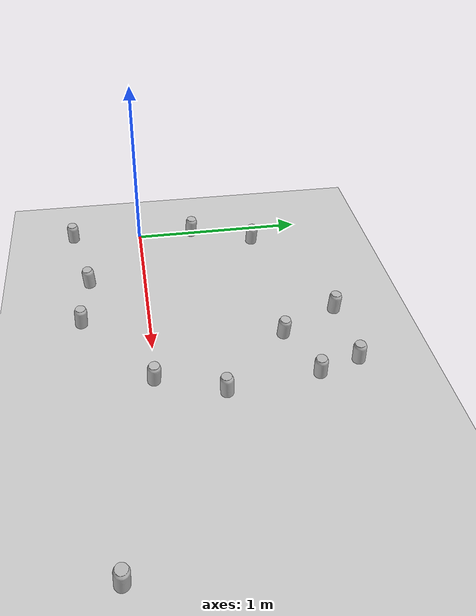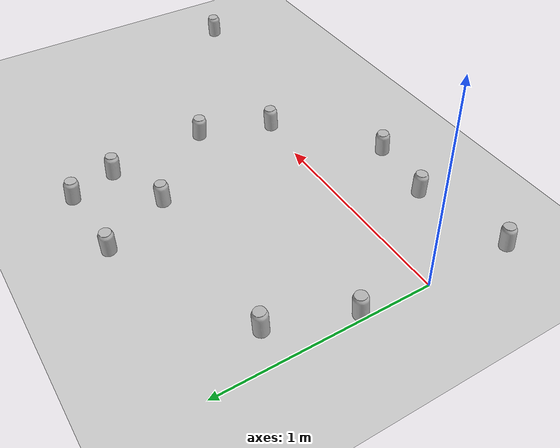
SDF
<sdf version="1.6">
 <world name="default">
  <model name="widmanstatten_plane">
   <static>1</static>
   <link name="link">
    <collision name="collision">
     <geometry><plane><normal>0 0 1</normal><size>200 200</size></plane></geometry>
     <surface><friction><ode><mu>100</mu><mu2>50</mu2></ode></friction></surface>
    </collision>
    <visual name="visual">
     <cast_shadows>0</cast_shadows>
     <geometry><plane><normal>0 0 1</normal><size>200 200</size></plane></geometry>
     <material>
      <script>
       <uri>model://widmanstatten_plane/materials/scripts/widmanstatten.material</uri>
       <uri>model://widmanstatten_plane/materials/textures/widmanstatten.jpg</uri>
       <name>widmanstatten/Diffuse</name>
      </script>
     </material>
    </visual>
   </link>
  </model>
  <model name="coke_can168">
   <link name="link">
    <inertial>
     <pose>0 0 0.06 0 -0 0</pose>
     <mass>0.39</mass>
     <inertia>
      <ixx>0.00055575</ixx>
      <ixy>0</ixy>
      <ixz>0</ixz>
      <iyy>0.00055575</iyy>
      <iyz>0</iyz>
      <izz>0.0001755</izz>
     </inertia>
    </inertial>
    <collision name="collision">
     <pose>0.003937 0.004724 -0.18 0 -0 0</pose>
     <geometry><mesh><uri>model://coke_can/meshes/coke_can.dae</uri></mesh></geometry>
     <surface>
      <friction><ode><mu>1</mu><mu2>1</mu2></ode></friction>
      <contact>
       <ode><kp>1e+07</kp><kd>1</kd><min_depth>0.001</min_depth><max_vel>0.1</max_vel></ode>
       <collide_bitmask>256</collide_bitmask>
      </contact>
     </surface>
    </collision>
    <visual name="visual">
     <pose>0.003937 0.004724 -0.18 0 -0 0</pose>
     <geometry><mesh><uri>model://coke_can/meshes/coke_can.dae</uri></mesh></geometry>
    </visual>
   </link>
   <pose>0.020783 0.32582 -0.002659 -0.055095 0.007755 -0.23942</pose>
  </model>
  <model name="coke_can185">
   <link name="link">
    <inertial>
     <pose>0 0 0.06 0 -0 0</pose>
     <mass>0.39</mass>
     <inertia>
      <ixx>0.00055575</ixx>
      <ixy>0</ixy>
      <ixz>0</ixz>
      <iyy>0.00055575</iyy>
      <iyz>0</iyz>
      <izz>0.0001755</izz>
     </inertia>
    </inertial>
    <collision name="collision">
     <pose>0.003937 0.004724 -0.18 0 -0 0</pose>
     <geometry><mesh><uri>model://coke_can/meshes/coke_can.dae</uri></mesh></geometry>
     <surface>
      <friction><ode><mu>1</mu><mu2>1</mu2></ode></friction>
      <contact>
       <ode><kp>1e+07</kp><kd>1</kd><min_depth>0.001</min_depth><max_vel>0.1</max_vel></ode>
       <collide_bitmask>256</collide_bitmask>
      </contact>
     </surface>
    </collision>
    <visual name="visual">
     <pose>0.003937 0.004724 -0.18 0 -0 0</pose>
     <geometry><mesh><uri>model://coke_can/meshes/coke_can.dae</uri></mesh></geometry>
    </visual>
   </link>
   <pose>1.23481 -0.009195 -0.002659 -0.055085 0.007761 -0.529775</pose>
  </model>
  <model name="coke_can201">
   <link name="link">
    <inertial>
     <pose>0 0 0.06 0 -0 0</pose>
     <mass>0.39</mass>
     <inertia>
      <ixx>0.00055575</ixx>
      <ixy>0</ixy>
      <ixz>0</ixz>
      <iyy>0.00055575</iyy>
      <iyz>0</iyz>
      <izz>0.0001755</izz>
     </inertia>
    </inertial>
    <collision name="collision">
     <pose>0.003937 0.004724 -0.18 0 -0 0</pose>
     <geometry><mesh><uri>model://coke_can/meshes/coke_can.dae</uri></mesh></geometry>
     <surface>
      <friction><ode><mu>1</mu><mu2>1</mu2></ode></friction>
      <contact>
       <ode><kp>1e+07</kp><kd>1</kd><min_depth>0.001</min_depth><max_vel>0.1</max_vel></ode>
       <collide_bitmask>256</collide_bitmask>
      </contact>
     </surface>
    </collision>
    <visual name="visual">
     <pose>0.003937 0.004724 -0.18 0 -0 0</pose>
     <geometry><mesh><uri>model://coke_can/meshes/coke_can.dae</uri></mesh></geometry>
    </visual>
   </link>
   <pose>1.29916 0.816745 -0.002659 -0.05511 0.007742 -2.43166</pose>
  </model>
  <model name="coke_can276">
   <link name="link">
    <inertial>
     <pose>0 0 0.06 0 -0 0</pose>
     <mass>0.39</mass>
     <inertia>
      <ixx>0.00055575</ixx>
      <ixy>0</ixy>
      <ixz>0</ixz>
      <iyy>0.00055575</iyy>
      <iyz>0</iyz>
      <izz>0.0001755</izz>
     </inertia>
    </inertial>
    <collision name="collision">
     <pose>0.003937 0.004724 -0.18 0 -0 0</pose>
     <geometry><mesh><uri>model://coke_can/meshes/coke_can.dae</uri></mesh></geometry>
     <surface>
      <friction><ode><mu>1</mu><mu2>1</mu2></ode></friction>
      <contact>
       <ode><kp>1e+07</kp><kd>1</kd><min_depth>0.001</min_depth><max_vel>0.1</max_vel></ode>
       <collide_bitmask>256</collide_bitmask>
      </contact>
     </surface>
    </collision>
    <visual name="visual">
     <pose>0.003937 0.004724 -0.18 0 -0 0</pose>
     <geometry><mesh><uri>model://coke_can/meshes/coke_can.dae</uri></mesh></geometry>
    </visual>
   </link>
   <pose>1.35665 0.336867 -0.002659 -0.055084 0.007759 2.71439</pose>
  </model>
  <model name="coke_can394">
   <link name="link">
    <inertial>
     <pose>0 0 0.06 0 -0 0</pose>
     <mass>0.39</mass>
     <inertia>
      <ixx>0.00055575</ixx>
      <ixy>0</ixy>
      <ixz>0</ixz>
      <iyy>0.00055575</iyy>
      <iyz>0</iyz>
      <izz>0.0001755</izz>
     </inertia>
    </inertial>
    <collision name="collision">
     <pose>0.003937 0.004724 -0.18 0 -0 0</pose>
     <geometry><mesh><uri>model://coke_can/meshes/coke_can.dae</uri></mesh></geometry>
     <surface>
      <friction><ode><mu>1</mu><mu2>1</mu2></ode></friction>
      <contact>
       <ode><kp>1e+07</kp><kd>1</kd><min_depth>0.001</min_depth><max_vel>0.1</max_vel></ode>
       <collide_bitmask>256</collide_bitmask>
      </contact>
     </surface>
    </collision>
    <visual name="visual">
     <pose>0.003937 0.004724 -0.18 0 -0 0</pose>
     <geometry><mesh><uri>model://coke_can/meshes/coke_can.dae</uri></mesh></geometry>
    </visual>
   </link>
   <pose>0.780643 -0.36462 -0.002658 -0.055086 0.007759 0.347185</pose>
  </model>
  <model name="coke_can586">
   <link name="link">
    <inertial>
     <pose>0 0 0.06 0 -0 0</pose>
     <mass>0.39</mass>
     <inertia>
      <ixx>0.00055575</ixx>
      <ixy>0</ixy>
      <ixz>0</ixz>
      <iyy>0.00055575</iyy>
      <iyz>0</iyz>
      <izz>0.0001755</izz>
     </inertia>
    </inertial>
    <collision name="collision">
     <pose>0.003937 0.004724 -0.18 0 -0 0</pose>
     <geometry><mesh><uri>model://coke_can/meshes/coke_can.dae</uri></mesh></geometry>
     <surface>
      <friction><ode><mu>1</mu><mu2>1</mu2></ode></friction>
      <contact>
       <ode><kp>1e+07</kp><kd>1</kd><min_depth>0.001</min_depth><max_vel>0.1</max_vel></ode>
       <collide_bitmask>256</collide_bitmask>
      </contact>
     </surface>
    </collision>
    <visual name="visual">
     <pose>0.003937 0.004724 -0.18 0 -0 0</pose>
     <geometry><mesh><uri>model://coke_can/meshes/coke_can.dae</uri></mesh></geometry>
    </visual>
   </link>
   <pose>1.23291 1.03709 -0.002659 -0.055107 0.007745 3.08592</pose>
  </model>
  <model name="coke_can611">
   <link name="link">
    <inertial>
     <pose>0 0 0.06 0 -0 0</pose>
     <mass>0.39</mass>
     <inertia>
      <ixx>0.00055575</ixx>
      <ixy>0</ixy>
      <ixz>0</ixz>
      <iyy>0.00055575</iyy>
      <iyz>0</iyz>
      <izz>0.0001755</izz>
     </inertia>
    </inertial>
    <collision name="collision">
     <pose>0.003937 0.004724 -0.18 0 -0 0</pose>
     <geometry><mesh><uri>model://coke_can/meshes/coke_can.dae</uri></mesh></geometry>
     <surface>
      <friction><ode><mu>1</mu><mu2>1</mu2></ode></friction>
      <contact>
       <ode><kp>1e+07</kp><kd>1</kd><min_depth>0.001</min_depth><max_vel>0.1</max_vel></ode>
       <collide_bitmask>256</collide_bitmask>
      </contact>
     </surface>
    </collision>
    <visual name="visual">
     <pose>0.003937 0.004724 -0.18 0 -0 0</pose>
     <geometry><mesh><uri>model://coke_can/meshes/coke_can.dae</uri></mesh></geometry>
    </visual>
   </link>
   <pose>2.22321 -0.209669 -0.002659 -0.055119 0.007735 0.612644</pose>
  </model>
  <model name="coke_can617">
   <link name="link">
    <inertial>
     <pose>0 0 0.06 0 -0 0</pose>
     <mass>0.39</mass>
     <inertia>
      <ixx>0.00055575</ixx>
      <ixy>0</ixy>
      <ixz>0</ixz>
      <iyy>0.00055575</iyy>
      <iyz>0</iyz>
      <izz>0.0001755</izz>
     </inertia>
    </inertial>
    <collision name="collision">
     <pose>0.003937 0.004724 -0.18 0 -0 0</pose>
     <geometry><mesh><uri>model://coke_can/meshes/coke_can.dae</uri></mesh></geometry>
     <surface>
      <friction><ode><mu>1</mu><mu2>1</mu2></ode></friction>
      <contact>
       <ode><kp>1e+07</kp><kd>1</kd><min_depth>0.001</min_depth><max_vel>0.1</max_vel></ode>
       <collide_bitmask>256</collide_bitmask>
      </contact>
     </surface>
    </collision>
    <visual name="visual">
     <pose>0.003937 0.004724 -0.18 0 -0 0</pose>
     <geometry><mesh><uri>model://coke_can/meshes/coke_can.dae</uri></mesh></geometry>
    </visual>
   </link>
   <pose>0.153766 0.690482 -0.002659 -0.055086 0.007758 -0.640321</pose>
  </model>
  <model name="coke_can618">
   <link name="link">
    <inertial>
     <pose>0 0 0.06 0 -0 0</pose>
     <mass>0.39</mass>
     <inertia>
      <ixx>0.00055575</ixx>
      <ixy>0</ixy>
      <ixz>0</ixz>
      <iyy>0.00055575</iyy>
      <iyz>0</iyz>
      <izz>0.0001755</izz>
     </inertia>
    </inertial>
    <collision name="collision">
     <pose>0.003937 0.004724 -0.18 0 -0 0</pose>
     <geometry><mesh><uri>model://coke_can/meshes/coke_can.dae</uri></mesh></geometry>
     <surface>
      <friction><ode><mu>1</mu><mu2>1</mu2></ode></friction>
      <contact>
       <ode><kp>1e+07</kp><kd>1</kd><min_depth>0.001</min_depth><max_vel>0.1</max_vel></ode>
       <collide_bitmask>256</collide_bitmask>
      </contact>
     </surface>
    </collision>
    <visual name="visual">
     <pose>0.003937 0.004724 -0.18 0 -0 0</pose>
     <geometry><mesh><uri>model://coke_can/meshes/coke_can.dae</uri></mesh></geometry>
    </visual>
   </link>
   <pose>-0.010186 -0.413444 -0.002659 -0.055131 0.007728 -1.22246</pose>
  </model>
  <model name="coke_can620">
   <link name="link">
    <inertial>
     <pose>0 0 0.06 0 -0 0</pose>
     <mass>0.39</mass>
     <inertia>
      <ixx>0.00055575</ixx>
      <ixy>0</ixy>
      <ixz>0</ixz>
      <iyy>0.00055575</iyy>
      <iyz>0</iyz>
      <izz>0.0001755</izz>
     </inertia>
    </inertial>
    <collision name="collision">
     <pose>0.003937 0.004724 -0.18 0 -0 0</pose>
     <geometry><mesh><uri>model://coke_can/meshes/coke_can.dae</uri></mesh></geometry>
     <surface>
      <friction><ode><mu>1</mu><mu2>1</mu2></ode></friction>
      <contact>
       <ode><kp>1e+07</kp><kd>1</kd><min_depth>0.001</min_depth><max_vel>0.1</max_vel></ode>
       <collide_bitmask>256</collide_bitmask>
      </contact>
     </surface>
    </collision>
    <visual name="visual">
     <pose>0.003937 0.004724 -0.18 0 -0 0</pose>
     <geometry><mesh><uri>model://coke_can/meshes/coke_can.dae</uri></mesh></geometry>
    </visual>
   </link>
   <pose>0.446571 -0.316182 -0.002659 -0.055134 0.007724 -2.70668</pose>
  </model>
  <model name="coke_can965">
   <link name="link">
    <inertial>
     <pose>0 0 0.06 0 -0 0</pose>
     <mass>0.39</mass>
     <inertia>
      <ixx>0.00055575</ixx>
      <ixy>0</ixy>
      <ixz>0</ixz>
      <iyy>0.00055575</iyy>
      <iyz>0</iyz>
      <izz>0.0001755</izz>
     </inertia>
    </inertial>
    <collision name="collision">
     <pose>0.003937 0.004724 -0.18 0 -0 0</pose>
     <geometry><mesh><uri>model://coke_can/meshes/coke_can.dae</uri></mesh></geometry>
     <surface>
      <friction><ode><mu>1</mu><mu2>1</mu2></ode></friction>
      <contact>
       <ode><kp>1e+07</kp><kd>1</kd><min_depth>0.001</min_depth><max_vel>0.1</max_vel></ode>
       <collide_bitmask>256</collide_bitmask>
      </contact>
     </surface>
    </collision>
    <visual name="visual">
     <pose>0.003937 0.004724 -0.18 0 -0 0</pose>
     <geometry><mesh><uri>model://coke_can/meshes/coke_can.dae</uri></mesh></geometry>
    </visual>
   </link>
   <pose>1.00233 0.697484 -0.002659 -0.055104 0.007747 -0.89083</pose>
  </model>
  <model name="coke_can968">
   <link name="link">
    <inertial>
     <pose>0 0 0.06 0 -0 0</pose>
     <mass>0.39</mass>
     <inertia>
      <ixx>0.00055575</ixx>
      <ixy>0</ixy>
      <ixz>0</ixz>
      <iyy>0.00055575</iyy>
      <iyz>0</iyz>
      <izz>0.0001755</izz>
     </inertia>
    </inertial>
    <collision name="collision">
     <pose>0.003937 0.004724 -0.18 0 -0 0</pose>
     <geometry><mesh><uri>model://coke_can/meshes/coke_can.dae</uri></mesh></geometry>
     <surface>
      <friction><ode><mu>1</mu><mu2>1</mu2></ode></friction>
      <contact>
       <ode><kp>1e+07</kp><kd>1</kd><min_depth>0.001</min_depth><max_vel>0.1</max_vel></ode>
       <collide_bitmask>256</collide_bitmask>
      </contact>
     </surface>
    </collision>
    <visual name="visual">
     <pose>0.003937 0.004724 -0.18 0 -0 0</pose>
     <geometry><mesh><uri>model://coke_can/meshes/coke_can.dae</uri></mesh></geometry>
    </visual>
   </link>
   <pose>0.851512 1.01893 -0.002659 -0.055092 0.007754 0.972044</pose>
  </model>
 </world>
</sdf>
